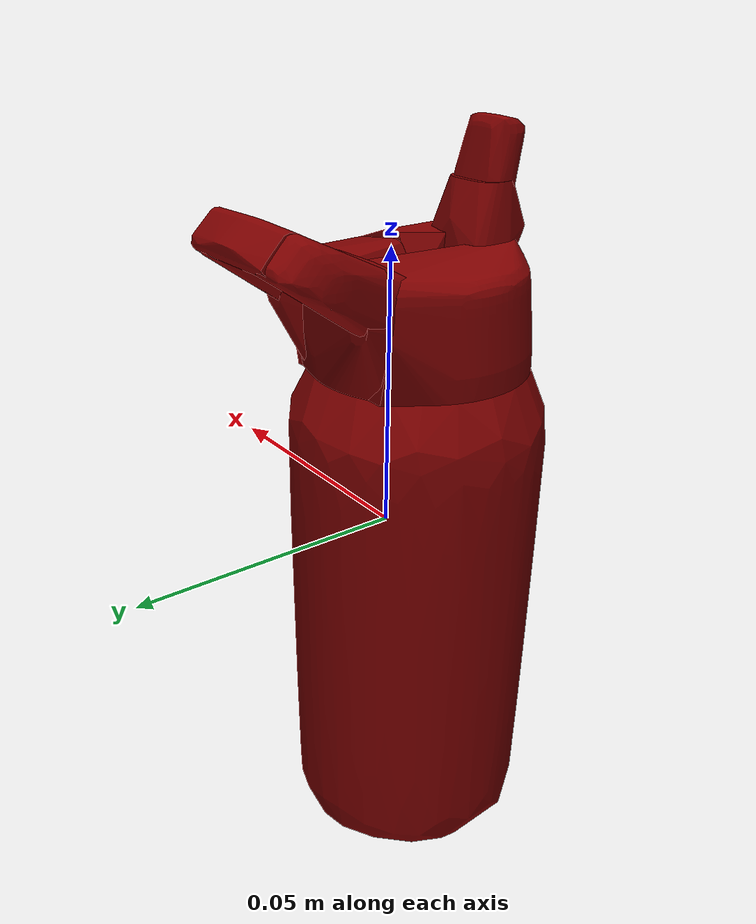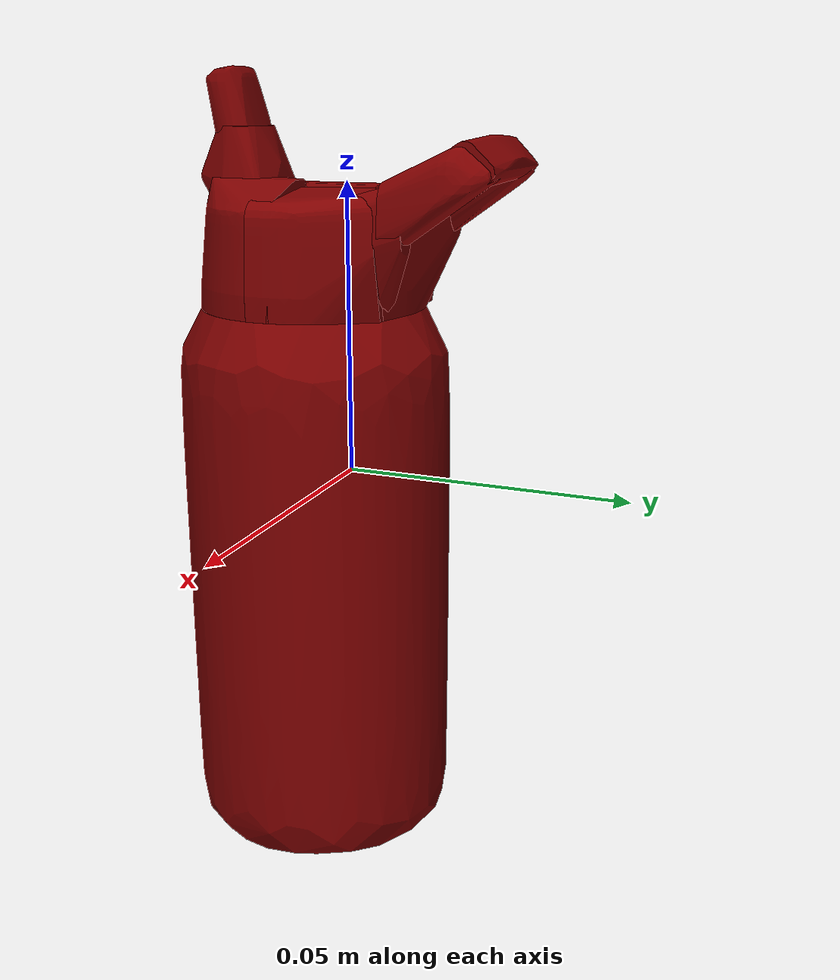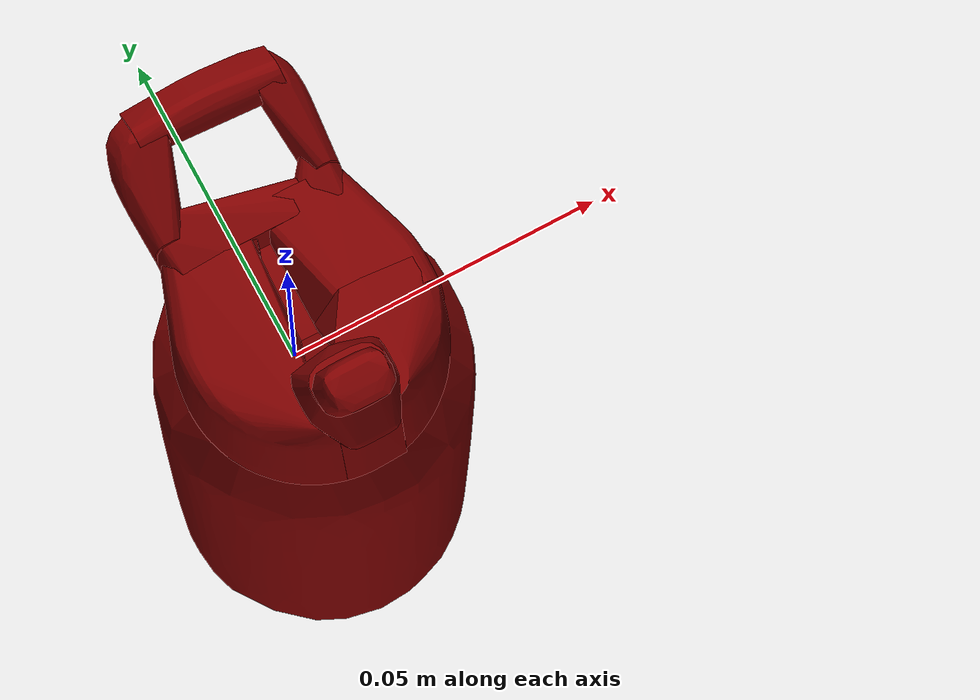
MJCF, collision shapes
<?xml version='1.0' encoding='utf-8'?>
<mujoco model="water_bottle_18">
  <asset>
    <mesh file="visual/model_normalized_0.obj" name="model_normalized_0_vis" scale="0.135 0.135 0.135" refquat="1.0 0.0 0.0 0.0" />
    <mesh file="visual/model_normalized_1.obj" name="model_normalized_1_vis" scale="0.135 0.135 0.135" refquat="1.0 0.0 0.0 0.0" />
    <mesh file="visual/model_normalized_2.obj" name="model_normalized_2_vis" scale="0.135 0.135 0.135" refquat="1.0 0.0 0.0 0.0" />
    <texture type="2d" name="image0" file="visual/image0.png" />
    <texture type="2d" name="image6" file="visual/image6.png" />
    <texture type="2d" name="image3" file="visual/image3.png" />
    <material name="Base_Mat" texture="image0" specular="0.5" shininess="0.25" />
    <material name="Cap_Mat" texture="image6" specular="0.5" shininess="0.25" />
    <material name="Straw_Mat" texture="image3" specular="0.5" shininess="0.25" />
    <mesh file="collision/collision_mesh_collision_0.obj" name="water_collision_mesh_0" scale="0.135 0.135 0.135" refquat="1.0 0.0 0.0 0.0" />
    <mesh file="collision/collision_mesh_collision_1.obj" name="water_collision_mesh_1" scale="0.135 0.135 0.135" refquat="1.0 0.0 0.0 0.0" />
    <mesh file="collision/collision_mesh_collision_2.obj" name="water_collision_mesh_2" scale="0.135 0.135 0.135" refquat="1.0 0.0 0.0 0.0" />
    <mesh file="collision/collision_mesh_collision_3.obj" name="water_collision_mesh_3" scale="0.135 0.135 0.135" refquat="1.0 0.0 0.0 0.0" />
    <mesh file="collision/collision_mesh_collision_4.obj" name="water_collision_mesh_4" scale="0.135 0.135 0.135" refquat="1.0 0.0 0.0 0.0" />
    <mesh file="collision/collision_mesh_collision_5.obj" name="water_collision_mesh_5" scale="0.135 0.135 0.135" refquat="1.0 0.0 0.0 0.0" />
    <mesh file="collision/collision_mesh_collision_6.obj" name="water_collision_mesh_6" scale="0.135 0.135 0.135" refquat="1.0 0.0 0.0 0.0" />
    <mesh file="collision/collision_mesh_collision_7.obj" name="water_collision_mesh_7" scale="0.135 0.135 0.135" refquat="1.0 0.0 0.0 0.0" />
    <mesh file="collision/collision_mesh_collision_8.obj" name="water_collision_mesh_8" scale="0.135 0.135 0.135" refquat="1.0 0.0 0.0 0.0" />
    <mesh file="collision/collision_mesh_collision_9.obj" name="water_collision_mesh_9" scale="0.135 0.135 0.135" refquat="1.0 0.0 0.0 0.0" />
    <mesh file="collision/collision_mesh_collision_10.obj" name="water_collision_mesh_10" scale="0.135 0.135 0.135" refquat="1.0 0.0 0.0 0.0" />
    <mesh file="collision/collision_mesh_collision_11.obj" name="water_collision_mesh_11" scale="0.135 0.135 0.135" refquat="1.0 0.0 0.0 0.0" />
    <mesh file="collision/collision_mesh_collision_12.obj" name="water_collision_mesh_12" scale="0.135 0.135 0.135" refquat="1.0 0.0 0.0 0.0" />
    <mesh file="collision/collision_mesh_collision_13.obj" name="water_collision_mesh_13" scale="0.135 0.135 0.135" refquat="1.0 0.0 0.0 0.0" />
    <mesh file="collision/collision_mesh_collision_14.obj" name="water_collision_mesh_14" scale="0.135 0.135 0.135" refquat="1.0 0.0 0.0 0.0" />
    <mesh file="collision/collision_mesh_collision_15.obj" name="water_collision_mesh_15" scale="0.135 0.135 0.135" refquat="1.0 0.0 0.0 0.0" />
    </asset>
  <default>
    <default class="region">
      <geom group="1" conaffinity="0" contype="0" rgba="0 1 0 0" />
      </default>
    <default class="collision">
      <geom group="0" rgba="0.5 0 0 0.5" density="1000.0" />
      </default>
    </default>
  <worldbody>
    <body>
      <body name="object">
        <geom solimp="0.998 0.998 0.001" solref="0.001 1" density="100" friction="0.95 0.3 0.1" type="mesh" mesh="model_normalized_0_vis" conaffinity="0" contype="0" group="1" material="Cap_Mat" />
        <geom solimp="0.998 0.998 0.001" solref="0.001 1" density="100" friction="0.95 0.3 0.1" type="mesh" mesh="model_normalized_1_vis" conaffinity="0" contype="0" group="1" material="Straw_Mat" />
        <geom solimp="0.998 0.998 0.001" solref="0.001 1" density="100" friction="0.95 0.3 0.1" type="mesh" mesh="model_normalized_2_vis" conaffinity="0" contype="0" group="1" material="Base_Mat" />
        <geom class="region" name="reg_bbox" type="box" pos="-2.5425224999999705e-05 8.9484749999999e-06 -0.00010811947499999447" size="0.0223649775 0.029024889300000002 0.06738852712500001" />
        <geom mesh="water_collision_mesh_0" type="mesh" class="collision" />
        <geom mesh="water_collision_mesh_1" type="mesh" class="collision" />
        <geom mesh="water_collision_mesh_2" type="mesh" class="collision" />
        <geom mesh="water_collision_mesh_3" type="mesh" class="collision" />
        <geom mesh="water_collision_mesh_4" type="mesh" class="collision" />
        <geom mesh="water_collision_mesh_5" type="mesh" class="collision" />
        <geom mesh="water_collision_mesh_6" type="mesh" class="collision" />
        <geom mesh="water_collision_mesh_7" type="mesh" class="collision" />
        <geom mesh="water_collision_mesh_8" type="mesh" class="collision" />
        <geom mesh="water_collision_mesh_9" type="mesh" class="collision" />
        <geom mesh="water_collision_mesh_10" type="mesh" class="collision" />
        <geom mesh="water_collision_mesh_11" type="mesh" class="collision" />
        <geom mesh="water_collision_mesh_12" type="mesh" class="collision" />
        <geom mesh="water_collision_mesh_13" type="mesh" class="collision" />
        <geom mesh="water_collision_mesh_14" type="mesh" class="collision" />
        <geom mesh="water_collision_mesh_15" type="mesh" class="collision" />
        </body>
      </body>
    </worldbody>
  </mujoco>
